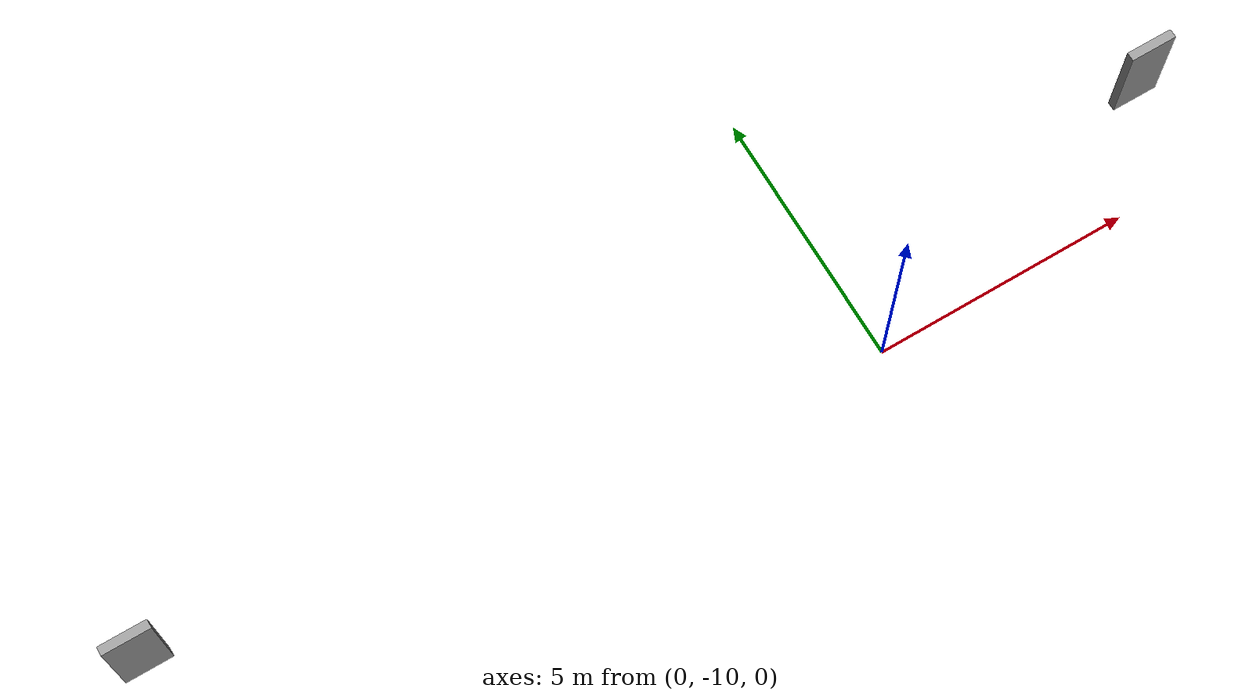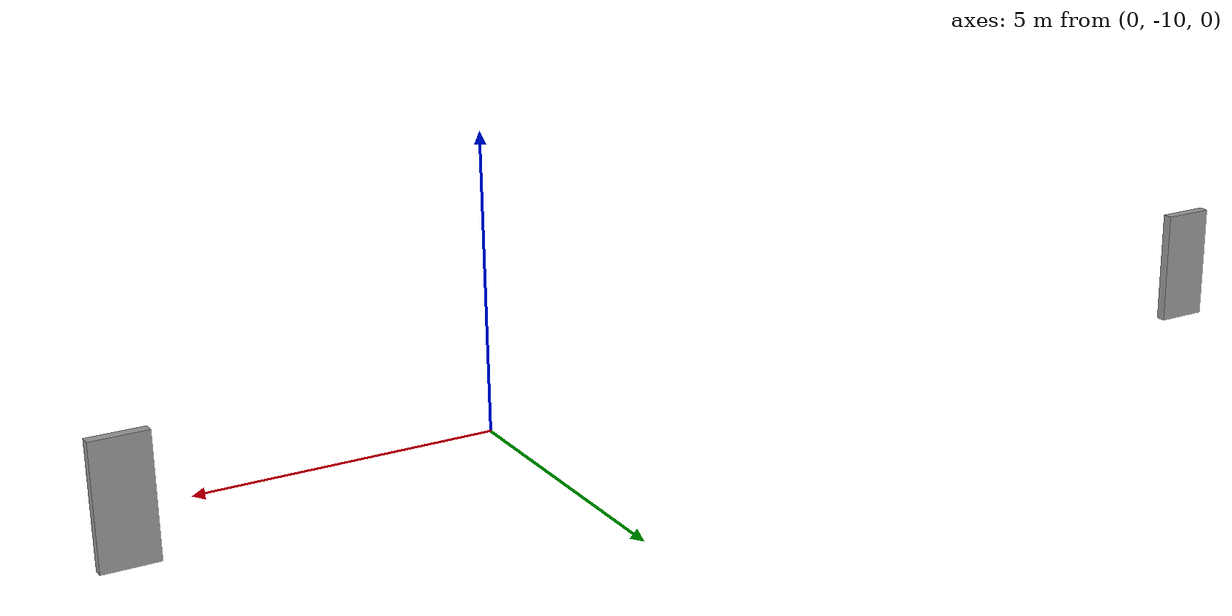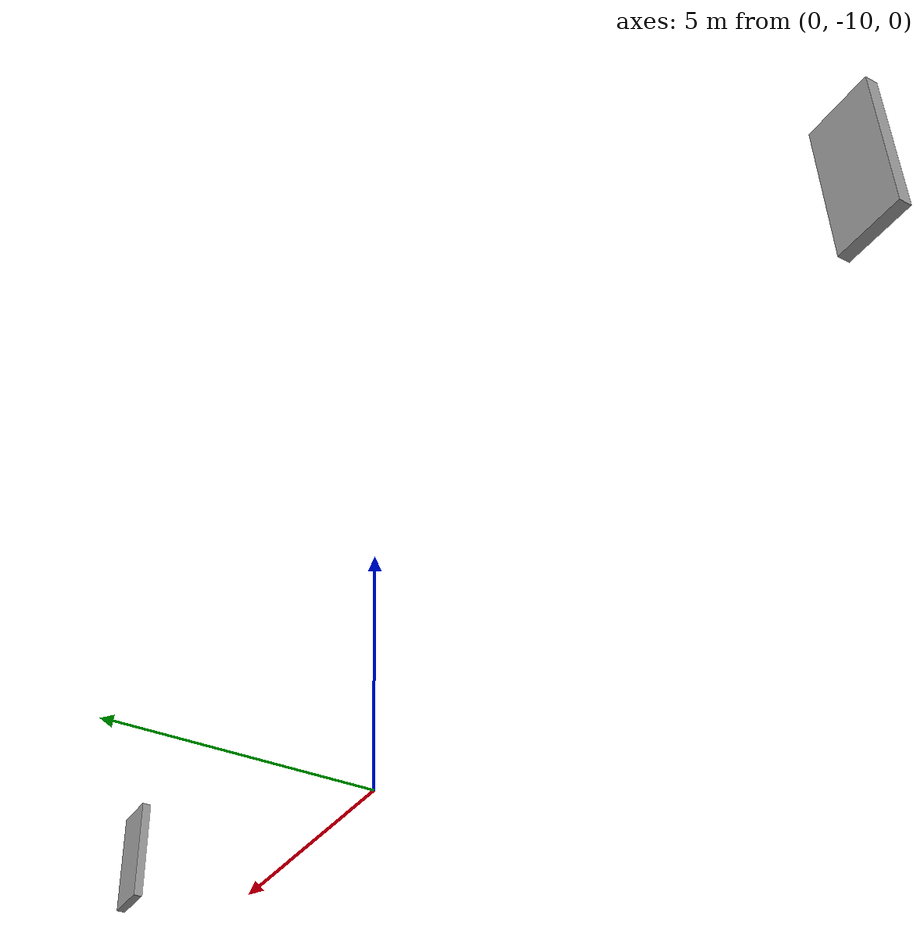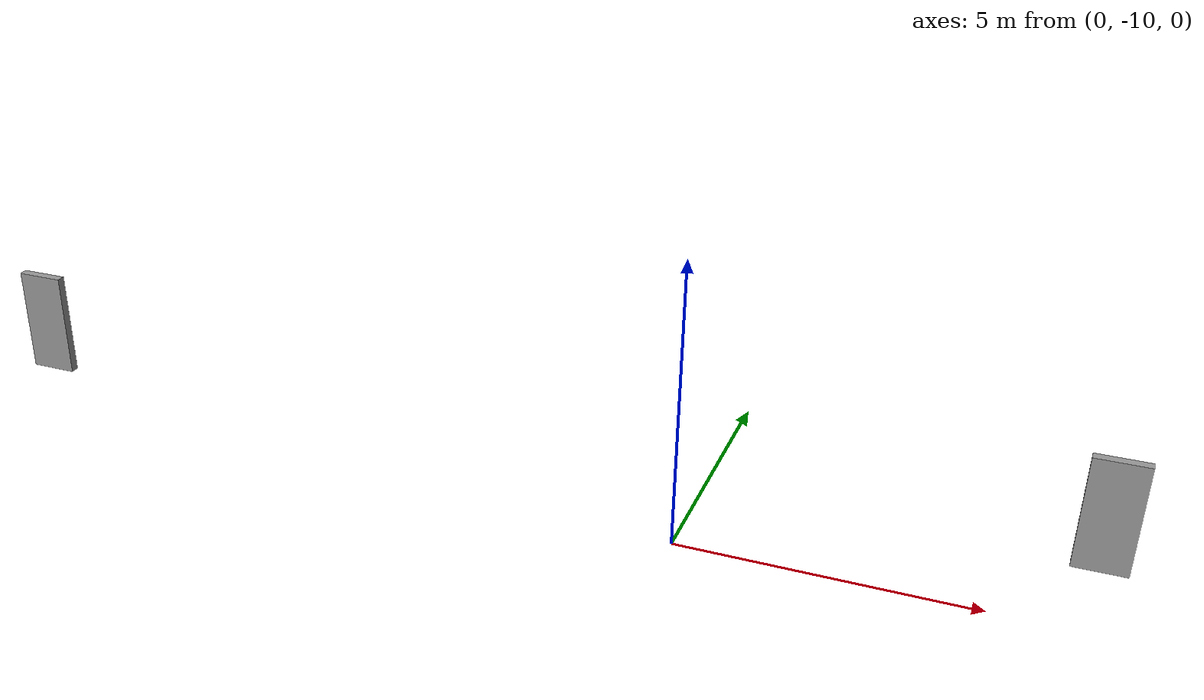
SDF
<?xml version='1.0'?>
<sdf version='1.6'>
  <model name='Untitled'>
    <pose frame=''>0 0 0 0 -0 0</pose>
    <link name='Door_1'>
      <collision name='Door_1_Collision'>
        <geometry>
          <box>
            <size>0.9 0.17 2</size>
          </box>
        </geometry>
        <pose frame=''>0 0 1 0 -0 0</pose>
      </collision>
      <visual name='Door_1_Visual'>
        <pose frame=''>0 0 1 0 -0 0</pose>
        <geometry>
          <box>
            <size>0.9 0.17 2</size>
          </box>
        </geometry>
        <material>
          <script>
            <uri>file://media/materials/scripts/gazebo.material</uri>
            <name>Gazebo/Grey</name>
          </script>
        </material>
      </visual>
      <pose frame=''>6.54229 -8.11992 0 0 -0 0</pose>
    </link>
    <link name='Door_2'>
      <collision name='Door_2_Collision'>
        <geometry>
          <box>
            <size>0.9 0.17 2</size>
          </box>
        </geometry>
        <pose frame=''>0 0 1 0 -0 0</pose>
      </collision>
      <visual name='Door_2_Visual'>
        <pose frame=''>0 0 1 0 -0 0</pose>
        <geometry>
          <box>
            <size>0.9 0.17 2</size>
          </box>
        </geometry>
        <material>
          <script>
            <uri>file://media/materials/scripts/gazebo.material</uri>
            <name>Gazebo/Grey</name>
          </script>
        </material>
      </visual>
      <pose frame=''>-13.5158 -8.42755 0 0 -0 0</pose>
    </link>
    <static>1</static>
  </model>
</sdf>
